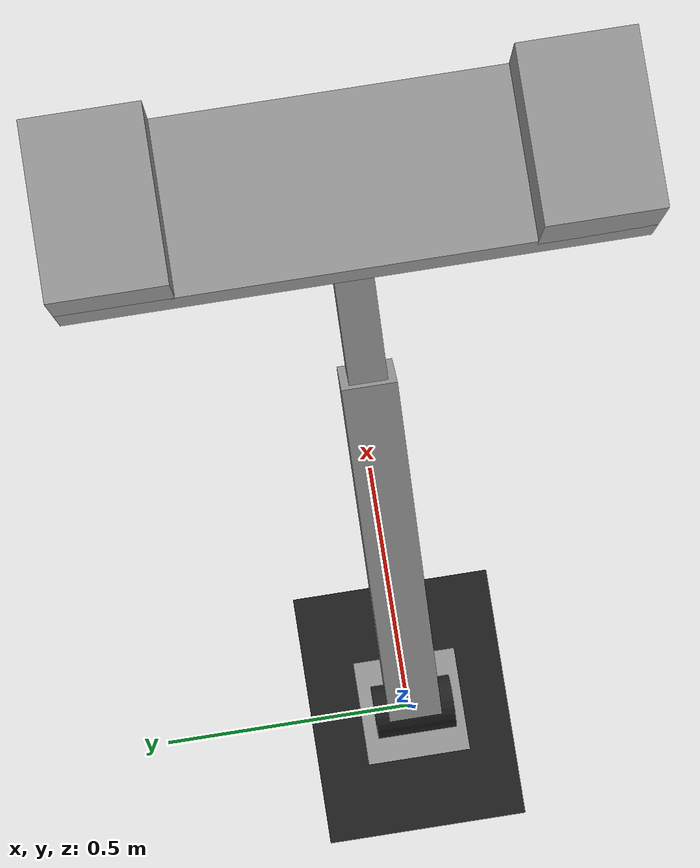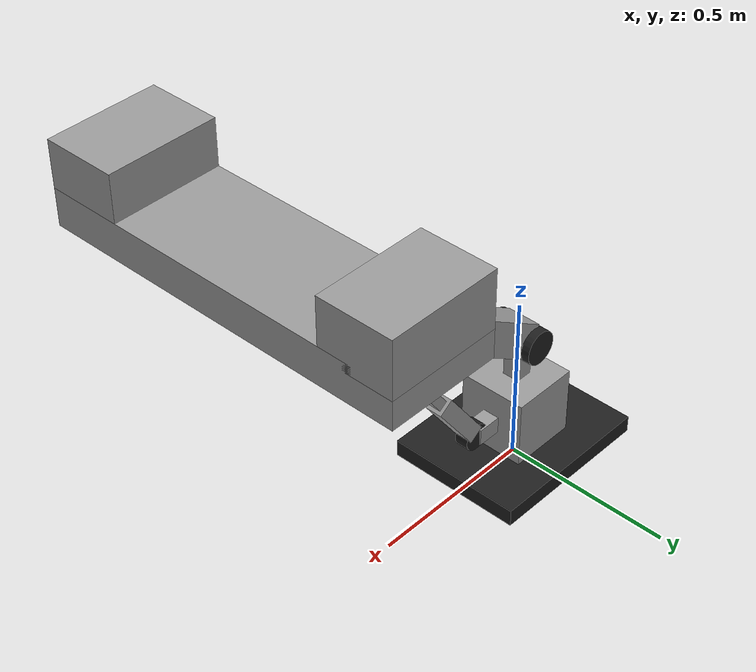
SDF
<?xml version="1.0"?>
<sdf version="1.4">
    <model name="simple_gripper">

      <static>false</static>

      <link name='chassis_2'>
            <pose>0 0 0.05 0 0 0</pose>
            <inertial>
              <mass>10.0</mass>
              <inertia>
                <ixx>1</ixx>
                <ixy>0</ixy>
                <ixz>0</ixz>
                <iyy>10000</iyy>
                <iyz>0</iyz>
                <izz>1</izz>
              </inertia>
            </inertial>
            <collision name='collision'>
              <geometry>
                <box>
                  <size>0.5 0.4 0.05</size>
                </box>
              </geometry>
            </collision>

            <visual name='visual'>
              <geometry>
                <box>
                  <size>0.5 0.4 0.05</size>
                </box>
              </geometry>
              <material>
              <script>
                <uri>file://media/materials/scripts/gazebo.material</uri>
                <name>Gazebo/Black</name>
              </script>
            </material>
            </visual>
  </link>

<link name="soporte_1">
        <pose>0 0 0.175 0 0 0</pose>
        <inertial>
          <mass>10.0</mass>
          <inertia>
            <ixx>1</ixx>
            <ixy>0</ixy>
            <ixz>0</ixz>
            <iyy>10000</iyy>
            <iyz>0</iyz>
            <izz>1</izz>
          </inertia>
        </inertial>
            <collision name='collision'>
              <geometry>
                <box>
                  <size>0.2 0.2 0.2</size>
                </box>
              </geometry>
            </collision>

            <visual name='visual'>
              <geometry>
                <box>
                  <size>0.2 0.2 0.2</size>
                </box>
              </geometry>
            <material>
              <script>
                <uri>file://media/materials/scripts/gazebo.material</uri>
                <name>Gazebo/Grey</name>
              </script>
            </material>
            </visual>
 </link>

 <link name="soporte_2">
         <pose>0 0 0.31 0 0 0</pose>
         <inertial>
           <mass>1.0</mass>
         </inertial>
             <collision name='collision'>
               <geometry>
                 <box>
                   <size>0.05 0.05 0.1</size>
                 </box>
               </geometry>
             </collision>

             <visual name='visual'>
               <geometry>
                 <box>
                   <size>0.05 0.05 0.1</size>
                 </box>
               </geometry>
             <material>
               <script>
                 <uri>file://media/materials/scripts/gazebo.material</uri>
                 <name>Gazebo/Grey</name>
               </script>
             </material>
             </visual>
  </link>

 <link name="cilindro_soporte">
         <pose>0 0 0.4 0 1.5707 1.5707</pose>
         <inertial>
           <mass>1.0</mass>
         </inertial>
             <collision name='collision'>
               <geometry>
                  <cylinder>
                    <radius>.05</radius>
                    <length>.15</length>
                  </cylinder>
               </geometry>
             </collision>

             <visual name='visual'>
               <geometry>
                  <cylinder>
                    <radius>.05</radius>
                    <length>.15</length>
                  </cylinder>
               </geometry>
             <material>
               <script>
                 <uri>file://media/materials/scripts/gazebo.material</uri>
                 <name>Gazebo/Black</name>
               </script>
             </material>
             </visual>
  </link>

<link name="viga_1">
        <pose>0.30 0 0.6 0 1 0</pose>
        <inertial>
          <mass>1.0</mass>
        </inertial>
            <collision name='collision'>
              <geometry>
                <box>
                  <size>0.1 0.1 0.7</size>
                </box>
              </geometry>
            </collision>

            <visual name='visual'>
              <geometry>
                <box>
                  <size>0.1 0.1 0.7</size>
                </box>
              </geometry>
            <material>
              <script>
                <uri>file://media/materials/scripts/gazebo.material</uri>
                <name>Gazebo/Grey</name>
              </script>
            </material>
            </visual>
 </link>

 <link name="viga_2">
         <pose>0.55 0 0.76 0 1 0</pose>
         <inertial>
           <mass>1.0</mass>
         </inertial>
             <collision name='collision'>
               <geometry>
                 <box>
                   <size>0.07 0.07 0.7</size>
                 </box>
               </geometry>
             </collision>

             <visual name='visual'>
               <geometry>
                 <box>
                   <size>0.07 0.07 0.7</size>
                 </box>
               </geometry>
             <material>
               <script>
                 <uri>file://media/materials/scripts/gazebo.material</uri>
                 <name>Gazebo/Grey</name>
               </script>
             </material>
             </visual>
  </link>

  <link name="anclaje_1">
          <pose>0.4 0 0.585 0 2.58 0</pose>
          <inertial>
            <mass>1.0</mass>
          </inertial>
              <collision name='collision'>
                <geometry>
                  <box>
                    <size>0.07 0.07 0.04</size>
                  </box>
                </geometry>
              </collision>

              <visual name='visual'>
                <geometry>
                  <box>
                    <size>0.07 0.07 0.04</size>
                  </box>
                </geometry>
              <material>
                <script>
                  <uri>file://media/materials/scripts/gazebo.material</uri>
                  <name>Gazebo/Grey</name>
                </script>
              </material>
              </visual>
   </link>

   <link name="anclaje_2">
           <pose>0.12 0 0.17 0 1.5707 0</pose>
           <inertial>
             <mass>1.0</mass>
             <inertia>
               <ixx>1</ixx>
               <ixy>0</ixy>
               <ixz>0</ixz>
               <iyy>1</iyy>
               <iyz>0</iyz>
               <izz>1</izz>
             </inertia>
           </inertial>
               <collision name='collison'>
                 <geometry>
                   <box>
                     <size>0.05 0.05 0.1</size>
                   </box>
                 </geometry>
               </collision>

               <visual name='visual'>
                 <geometry>
                   <box>
                     <size>0.05 0.05 0.1</size>
                   </box>
                 </geometry>
               <material>
                 <script>
                   <uri>file://media/materials/scripts/gazebo.material</uri>
                   <name>Gazebo/Grey</name>
                 </script>
               </material>
               </visual>
    </link>

    <link name="viga_3">
            <pose>0.25 0 0.28 0 0.62 0</pose>
            <inertial>
              <mass>1.0</mass>
            </inertial>
                <collision name='collision'>
                  <geometry>
                    <box>
                      <size>0.05 0.05 0.21</size>
                    </box>
                  </geometry>
                </collision>

                <visual name='visual'>
                  <geometry>
                    <box>
                      <size>0.05 0.05 0.21</size>
                    </box>
                  </geometry>
                <material>
                  <script>
                    <uri>file://media/materials/scripts/gazebo.material</uri>
                    <name>Gazebo/Grey</name>
                  </script>
                </material>
                </visual>
     </link>

     <link name="viga_4">
             <pose>0.36 0 0.435 0 0.62 0</pose>
             <inertial>
               <mass>1.0</mass>
             </inertial>
                 <collision name='collision'>
                   <geometry>
                     <box>
                       <size>0.03 0.03 0.25</size>
                     </box>
                   </geometry>
                 </collision>

                 <visual name='visual'>
                   <geometry>
                     <box>
                       <size>0.03 0.03 0.25</size>
                     </box>
                   </geometry>
                 <material>
                   <script>
                     <uri>file://media/materials/scripts/gazebo.material</uri>
                     <name>Gazebo/Grey</name>
                   </script>
                 </material>
                 </visual>
      </link>

<link name="plataforma">
        <pose>0.87 0 1.1 0 0 0</pose>
        <inertial>
          <mass>1.0</mass>
        </inertial>
            <collision name='collision'>
              <geometry>
                <box>
                  <size>0.3 1.0 0.1</size>
                </box>
              </geometry>
            </collision>

            <visual name='visual'>
              <geometry>
                <box>
                  <size>0.3 1.0 0.1</size>
                </box>
              </geometry>
            <material>
              <script>
                <uri>file://media/materials/scripts/gazebo.material</uri>
                <name>Gazebo/Grey</name>
              </script>
            </material>
            </visual>
 </link>

 <link name="plataforma_2">
         <pose>0.87 0.4 1.20 0 0 0</pose>
         <inertial>
           <mass>1.0</mass>
         </inertial>
             <collision name='collision'>
               <geometry>
                 <box>
                   <size>0.3 0.2 0.15</size>
                 </box>
               </geometry>
             </collision>

             <visual name='visual'>
               <geometry>
                 <box>
                   <size>0.3 0.2 0.15</size>
                 </box>
               </geometry>
             <material>
               <script>
                 <uri>file://media/materials/scripts/gazebo.material</uri>
                 <name>Gazebo/Grey</name>
               </script>
             </material>
             </visual>
  </link>

  <link name="plataforma_3">
          <pose>0.87 -0.4 1.20 0 0 0</pose>
          <inertial>
            <mass>1.0</mass>
          </inertial>
              <collision name='collision'>
                <geometry>
                  <box>
                    <size>0.3 0.2 0.15</size>
                  </box>
                </geometry>
              </collision>

              <visual name='visual'>
                <geometry>
                  <box>
                    <size>0.3 0.2 0.15</size>
                  </box>
                </geometry>
              <material>
                <script>
                  <uri>file://media/materials/scripts/gazebo.material</uri>
                  <name>Gazebo/Grey</name>
                </script>
              </material>
              </visual>
   </link>

 <link name="cilindro_plataforma">
        <pose>0.87 0 0.97 0 1.5707 1.5707</pose>
        <inertial>
          <mass>1.0</mass>
        </inertial>
        <collision name="collision">
          <geometry>
            <cylinder>
              <radius>.05</radius>
              <length>.10</length>
            </cylinder>
          </geometry>
        </collision>
        <visual name="visual">
          <geometry>
            <cylinder>
              <radius>.05</radius>
              <length>.10</length>
            </cylinder>
          </geometry>
          <material>
            <script>
              <uri>file://media/materials/scripts/gazebo.material</uri>
              <name>Gazebo/Black</name>
            </script>
          </material>
        </visual>
      </link>

      <link name="cilindro_anclaje_1">
             <pose>0.42 0 0.548 0 1.5707 1.5707</pose>
             <inertial>
               <mass>1.0</mass>
             </inertial>
             <collision name="collision">
               <geometry>
                 <cylinder>
                   <radius>.04</radius>
                   <length>.06</length>
                 </cylinder>
               </geometry>
             </collision>
             <visual name="visual">
               <geometry>
                 <cylinder>
                   <radius>.04</radius>
                   <length>.06</length>
                 </cylinder>
               </geometry>
               <material>
                 <script>
                   <uri>file://media/materials/scripts/gazebo.material</uri>
                   <name>Gazebo/Black</name>
                 </script>
               </material>
             </visual>
           </link>

           <link name="cilindro_anclaje_2">
                  <pose>0.18 0 0.177 0 1.5707 1.5707</pose>
                  <inertial>
                    <mass>1.0</mass>
                  </inertial>
                  <collision name="collision">
                    <geometry>
                      <cylinder>
                        <radius>.04</radius>
                        <length>.04</length>
                      </cylinder>
                    </geometry>
                  </collision>
                  <visual name="visual">
                    <geometry>
                      <cylinder>
                        <radius>.04</radius>
                        <length>.04</length>
                      </cylinder>
                    </geometry>
                    <material>
                      <script>
                        <uri>file://media/materials/scripts/gazebo.material</uri>
                        <name>Gazebo/Black</name>
                      </script>
                    </material>
                  </visual>
                </link>

      <link name="cilindro_pequeno_eje_z">
             <pose>0.87 0 1.04 0 0 0</pose>
             <inertial>
               <mass>1.0</mass>
             </inertial>
             <collision name="collision">
               <geometry>
                 <cylinder>
                   <radius>.02</radius>
                   <length>.08</length>
                 </cylinder>
               </geometry>
             </collision>
             <visual name="visual">
               <geometry>
                 <cylinder>
                   <radius>.02</radius>
                   <length>.08</length>
                 </cylinder>
               </geometry>
               <material>
                 <script>
                   <uri>file://media/materials/scripts/gazebo.material</uri>
                   <name>Gazebo/Grey</name>
                 </script>
               </material>
             </visual>
           </link>

      <joint type="revolute" name="art_eje_y">
        <pose>0 0 -0.33 0 0 0</pose>
        <child>viga_1</child>
        <parent>cilindro_soporte</parent>
        <axis>
          <xyz>0 1 0</xyz>
        </axis>
      </joint>

      <joint type="revolute" name="art_ancl_1_eje_y">
        <pose>0 0 0 0 0 0</pose>
        <child>cilindro_anclaje_2</child>
        <parent>anclaje_2</parent>
        <axis>
          <xyz>0 1 0</xyz>
        </axis>
      </joint>

      <joint type="revolute" name="art_ancl_2_eje_y">
        <pose>0 0 0 0 0 0</pose>
        <child>cilindro_anclaje_1</child>
        <parent>anclaje_1</parent>
        <axis>
          <xyz>0 1 0</xyz>
        </axis>
      </joint>

      <joint type="fixed" name="art_cil_sop_fija">
        <pose>0 0 0 0 0 0</pose>
        <child>cilindro_soporte</child>
        <parent>soporte_1</parent>
      </joint>

      <joint type="fixed" name="art_cil_cil_peq">
        <pose>0 0 0 0 0 0</pose>
        <child>cilindro_plataforma</child>
        <parent>cilindro_pequeno_eje_z</parent>
      </joint>

      <joint type="fixed" name="art_fija">
        <pose>0 0 0 0 0 0</pose>
        <child>cilindro_pequeno_eje_z</child>
        <parent>cilindro_plataforma</parent>
      </joint>

      <joint type="fixed" name="art_fija_1">
        <pose>0 0 0 0 0 0</pose>
        <child>plataforma_2</child>
        <parent>plataforma</parent>
      </joint>

      <joint type="fixed" name="art_fija_2">
        <pose>0 0 0 0 0 0</pose>
        <child>plataforma_3</child>
        <parent>plataforma</parent>
      </joint>

      <joint type="fixed" name="art_fija_7">
        <pose>0 0 0 0 0 0</pose>
        <child>cilindro_soporte</child>
        <parent>soporte_2</parent>
      </joint>

      <joint type="fixed" name="art_fija_8">
        <pose>0 0 0 0 0 0</pose>
        <child>soporte_1</child>
        <parent>soporte_2</parent>
      </joint>

      <joint type="fixed" name="art_fija_9">
        <pose>0 0 0 0 0 0</pose>
        <child>anclaje_1</child>
        <parent>viga_1</parent>
      </joint>

      <joint type="fixed" name="art_fija_10">
        <pose>0 0 0 0 0 0</pose>
        <child>anclaje_2</child>
        <parent>soporte_1</parent>
      </joint>

      <joint type="fixed" name="art_fija_11">
        <pose>0 0 0 0 0 0</pose>
        <child>viga_4</child>
        <parent>cilindro_anclaje_1</parent>
      </joint>

      <joint type="fixed" name="art_fija_12">
        <pose>0 0 0 0 0 0</pose>
        <child>viga_3</child>
        <parent>cilindro_anclaje_2</parent>
      </joint>

      <joint type="fixed" name="art_fija_14">
        <pose>0 0 0 0 0 0</pose>
        <child>cilindro_plataforma</child>
        <parent>viga_2</parent>
      </joint>

      <joint type="fixed" name="art_fija_15">
        <pose>0 0 0 0 0 0</pose>
        <child>plataforma</child>
        <parent>cilindro_pequeno_eje_z</parent>
      </joint>

      <joint type="fixed" name="art_fija_16">
        <pose>0 0 0 0 0 0</pose>
        <child>soporte_1</child>
        <parent>chassis_2</parent>
      </joint>

      <joint name="art_lineal_up" type="prismatic">
        <pose>0 0 0 0 0 0</pose>
        <parent>viga_1</parent>
        <child>viga_2</child>
        <axis>
          <dynamics>
            <damping>1.000000</damping>
            <friction>0.000000</friction>
          </dynamics>
          <limit>
            <lower>-0.55</lower>
            <upper>0.4</upper>
          </limit>
          <xyz>1.6 0 1</xyz>
          <use_parent_model_frame>true</use_parent_model_frame>
        </axis>
      </joint>

      <joint name="art_lineal_dw" type="prismatic">
        <pose>0 0 0 0 0 0</pose>
        <parent>viga_3</parent>
        <child>viga_4</child>
        <axis>
          <dynamics>
            <damping>1.000000</damping>
            <friction>0.000000</friction>
          </dynamics>
          <limit>
            <lower>-0.25</lower>
            <upper>0</upper>
          </limit>
          <xyz>0.62 0 1</xyz>
          <use_parent_model_frame>true</use_parent_model_frame>
        </axis>
      </joint>

    </model>
</sdf>
